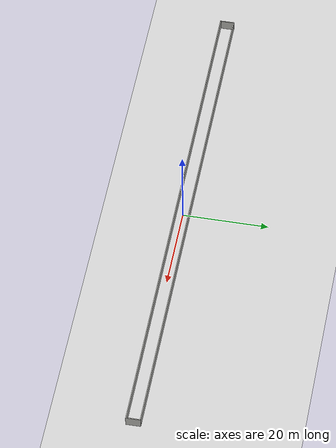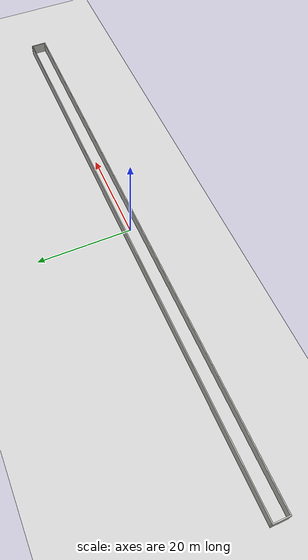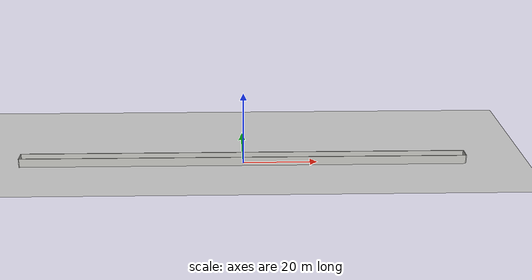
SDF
<?xml version="1.0" ?>
<sdf version="1.6">
  <world name="long_corridor">

    <include>
      <uri>model://sun</uri>
    </include>

    <include>
      <uri>model://ground_plane</uri>
    </include>

    <physics type="ode">
      <gravity>0 0 -9.8</gravity>
      <max_step_size>0.001</max_step_size>
      <real_time_factor>1.0</real_time_factor>
      <real_time_update_rate>1000</real_time_update_rate>
    </physics>

    <scene>
      <ambient>0.65 0.65 0.65 1</ambient>
      <background>0.70 0.78 0.86 1</background>
      <shadows>false</shadows>
    </scene>

    <gui fullscreen="0">
      <camera name="user_camera">
        <pose>-8 -10 9 0 0.75 0.82</pose>
      </camera>
    </gui>

    <!-- Left wall. Inner face is at y = +1.5 m. -->
    <model name="left_wall">
      <static>true</static>
      <pose>0 1.6 1.2 0 0 0</pose>
      <link name="left_wall_link">
        <collision name="left_wall_collision">
          <geometry>
            <box>
              <size>120.0 0.2 2.4</size>
            </box>
          </geometry>
        </collision>
        <visual name="left_wall_visual">
          <geometry>
            <box>
              <size>120.0 0.2 2.4</size>
            </box>
          </geometry>
          <material>
            <ambient>0.78 0.78 0.76 1</ambient>
            <diffuse>0.78 0.78 0.76 1</diffuse>
            <specular>0.03 0.03 0.03 1</specular>
          </material>
        </visual>
      </link>
    </model>

    <!-- Right wall. Same size and material as the left wall. Inner face is at y = -1.5 m. -->
    <model name="right_wall">
      <static>true</static>
      <pose>0 -1.6 1.2 0 0 0</pose>
      <link name="right_wall_link">
        <collision name="right_wall_collision">
          <geometry>
            <box>
              <size>120.0 0.2 2.4</size>
            </box>
          </geometry>
        </collision>
        <visual name="right_wall_visual">
          <geometry>
            <box>
              <size>120.0 0.2 2.4</size>
            </box>
          </geometry>
          <material>
            <ambient>0.78 0.78 0.76 1</ambient>
            <diffuse>0.78 0.78 0.76 1</diffuse>
            <specular>0.03 0.03 0.03 1</specular>
          </material>
        </visual>
      </link>
    </model>

    <!-- End walls close the corridor far away from the robot's usual start pose. -->
    <model name="front_end_wall">
      <static>true</static>
      <pose>60.1 0 1.2 0 0 0</pose>
      <link name="front_end_wall_link">
        <collision name="front_end_wall_collision">
          <geometry>
            <box>
              <size>0.2 3.4 2.4</size>
            </box>
          </geometry>
        </collision>
        <visual name="front_end_wall_visual">
          <geometry>
            <box>
              <size>0.2 3.4 2.4</size>
            </box>
          </geometry>
          <material>
            <ambient>0.78 0.78 0.76 1</ambient>
            <diffuse>0.78 0.78 0.76 1</diffuse>
            <specular>0.03 0.03 0.03 1</specular>
          </material>
        </visual>
      </link>
    </model>

    <model name="back_end_wall">
      <static>true</static>
      <pose>-60.1 0 1.2 0 0 0</pose>
      <link name="back_end_wall_link">
        <collision name="back_end_wall_collision">
          <geometry>
            <box>
              <size>0.2 3.4 2.4</size>
            </box>
          </geometry>
        </collision>
        <visual name="back_end_wall_visual">
          <geometry>
            <box>
              <size>0.2 3.4 2.4</size>
            </box>
          </geometry>
          <material>
            <ambient>0.78 0.78 0.76 1</ambient>
            <diffuse>0.78 0.78 0.76 1</diffuse>
            <specular>0.03 0.03 0.03 1</specular>
          </material>
        </visual>
      </link>
    </model>
  </world>
</sdf>
